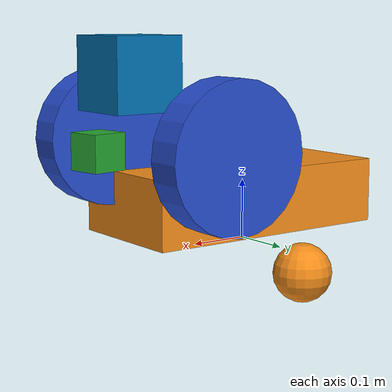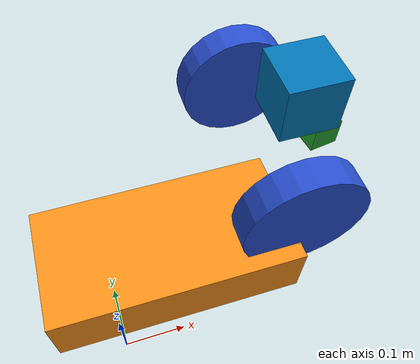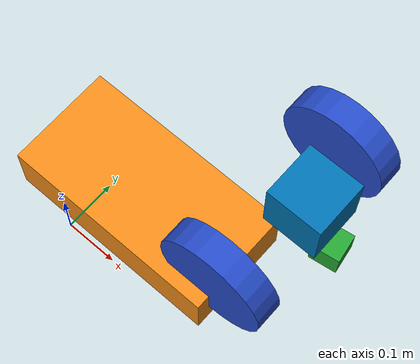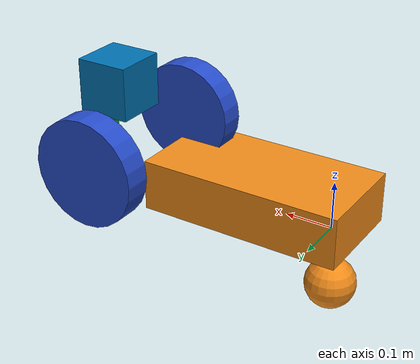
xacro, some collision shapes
<?xml version='1.0'?>

<robot name="myrobot" xmlns:xacro="http://www.ros.org/wiki/xacro">

<!-- camera size -->
  <xacro:property name="cameraSize" value="0.05"/>
  <xacro:property name="cameraMass" value="0.1"/>
<!-- robot's position -->
  <xacro:property name="pose_x" value="0.1"/>
  <xacro:property name="pose_y" value="0.1"/>
  <xacro:property name="pose_z" value="0.1"/>

  <xacro:include filename="$(find gazebo_sim)/src/mybot_ws/src/mybot_description/urdf/mybot.gazebo" />
  <xacro:include filename="$(find gazebo_sim)/src/mybot_ws/src/mybot_description/urdf/materials.xacro" />
  <xacro:include filename="$(find gazebo_sim)/src/mybot_ws/src/mybot_description/urdf/macros.xacro" />

  <link name='chassis'>
    <pose>${pose_x} ${pose_y} ${pose_z} 0 0 0</pose>

    <inertial>
      <mass value="10.0"/>
      <origin xyz="${pose_x} ${pose_y} ${pose_z+0.1}" rpy=" 0 0 0"/>
      <inertia
          ixx="0.5" ixy="0" ixz="0"
          iyy="1.0" iyz="0"
          izz="0.1"
      />
    </inertial>

    <collision name='collision'>
      <geometry>
        <box size=".4 .2 .1"/>
      </geometry>
    </collision>

    <visual name='chassis_visual'>
      <origin xyz="${pose_x} ${pose_y} ${pose_z}" rpy=" 0 0 0"/>
      <geometry>
        <box size=".4 .2 .1"/>
      </geometry>
    </visual>

    <collision name='caster_collision'>
      <origin xyz="${pose_x-0.15} ${pose_y} ${pose_z-0.15}" rpy=" 0 0 0"/>
      <geometry>
        <sphere radius="0.05"/>
      </geometry>
      <surface>
        <friction>
          <ode>
            <mu>0</mu>
            <mu2>0</mu2>
            <slip1>1.0</slip1>
            <slip2>1.0</slip2>
          </ode>
        </friction>
      </surface>
    </collision>

    <visual name='caster_visual'>
      <origin xyz="${pose_x-0.15} ${pose_y} ${pose_z-0.15}" rpy=" 0 0 0"/>
      <geometry>
        <sphere radius="0.05"/>
      </geometry>
    </visual>
  </link>

  <link name="left_wheel">
    <!--origin xyz="0.1 0.13 0.1" rpy="0 1.5707 1.5707"/-->
    <collision name="collision">
      <origin xyz="${pose_x} ${pose_y} ${pose_z}" rpy="0 1.5707 1.5707"/>
      <geometry>
        <cylinder radius="0.1" length="0.05"/>
      </geometry>
    </collision>
    <visual name="left_wheel_visual">
      <origin xyz="${pose_x} ${pose_y} ${pose_z}" rpy="0 1.5707 1.5707"/>
      <geometry>
        <cylinder radius="0.1" length="0.05"/>
      </geometry>
    </visual>
    <inertial>
      <origin xyz="${pose_x} ${pose_y} ${pose_z}" rpy="0 1.5707 1.5707"/>
      <mass value="5"/>
      <cylinder_inertia m="5" r="0.1" h="0.05"/>
      <inertia
        ixx="1.0" ixy="0.0" ixz="0.0"
        iyy="1.0" iyz="0.0"
        izz="1.0"/>
    </inertial>
  </link>

  <link name="right_wheel">
    <!--origin xyz="0.1 -0.13 0.1" rpy="0 1.5707 1.5707"/-->
    <collision name="collision">
      <origin xyz="${pose_x} ${pose_y} ${pose_z}" rpy="0 1.5707 1.5707"/>
      <geometry>
        <cylinder radius="0.1" length="0.05"/>
      </geometry>
    </collision>
    <visual name="right_wheel_visual">
      <origin xyz="${pose_x} ${pose_y} ${pose_z}" rpy="0 1.5707 1.5707"/>
      <geometry>
        <cylinder radius="0.1" length="0.05"/>
      </geometry>
    </visual>
    <inertial>
      <origin xyz="${pose_x} ${pose_y} ${pose_z}" rpy="0 1.5707 1.5707"/>
      <mass value="5"/>
      <cylinder_inertia m="5" r="0.1" h="0.05"/>
      <inertia
        ixx="1.0" ixy="0.0" ixz="0.0"
        iyy="1.0" iyz="0.0"
        izz="1.0"/>
    </inertial>
  </link>

  <joint type="continuous" name="left_wheel_hinge">
    <origin xyz="${pose_x+0.1} ${pose_y+0.15} ${pose_z+0}" rpy="0 0 0"/>
    <!--origin xyz="0.1 0.13 0" rpy="0 1.5707 1.5707"/-->
    <child link="left_wheel"/>
    <parent link="chassis"/>
    <axis xyz="0 1 0" rpy="0 0 0"/>
    <limit effort="100" velocity="100"/>
    <joint_properties damping="0.0" friction="0.0"/>
  </joint>

  <joint type="continuous" name="right_wheel_hinge">
    <origin xyz="${pose_x+0.1} ${pose_y-0.15} ${pose_z+0}" rpy="0 0 0"/>
    <!--origin xyz="0.1 -0.13 0" rpy="0 1.5707 1.5707"/-->
    <child link="right_wheel"/>
    <parent link="chassis"/>
    <axis xyz="0 1 0" rpy="0 0 0"/>
    <limit effort="100" velocity="100"/>
    <joint_properties damping="0.0" friction="0.0"/>
  </joint>

  <link name="camera">
    <collision>
      <origin xyz="${pose_x} ${pose_y} ${pose_z}" rpy="0 0 30"/>
      <geometry>
        <box size="${cameraSize} ${cameraSize} ${cameraSize}"/>
      </geometry>
    </collision>

    <visual>
      <origin xyz="${pose_x} ${pose_y} ${pose_z}" rpy="0 0 30"/>
      <geometry>
        <box size="${cameraSize} ${cameraSize} ${cameraSize}"/>
      </geometry>
      <material name="green"/>
    </visual>

    <inertial>
      <mass value="${cameraMass}" />
      <origin xyz="${pose_x} ${pose_y} ${pose_z}" rpy="0 0 30"/>
      <box_inertia m="${cameraMass}" x="${cameraSize}" y="${cameraSize}" z="${cameraSize}" />
      <inertia ixx="1e-6" ixy="0" ixz="0" iyy="1e-6" iyz="0" izz="1e-6" />
    </inertial>
  </link>

  <joint name="camera_joint" type="fixed">
    <axis xyz="0 1 0" />
    <origin xyz="${pose_x+0.2} ${pose_y} ${pose_z}" rpy="0 0 0"/>
    <parent link="chassis"/>
    <child link="camera"/>
  </joint>

  <joint name="hokuyo_joint" type="fixed">
    <axis xyz="0 1 0" />
    <origin xyz="${pose_x+0.15} ${pose_y} ${pose_z+0.1}" rpy="0 0 0"/>
    <parent link="chassis"/>
    <child link="hokuyo"/>
  </joint>

  <!-- Hokuyo Laser -->
  <link name="hokuyo">
    <collision>
      <origin xyz="${pose_x} ${pose_y} ${pose_z}" rpy="0 0 0"/>
      <geometry>
    <box size="0.1 0.1 0.1"/>
      </geometry>
    </collision>

    <visual>
      <origin xyz="${pose_x} ${pose_y} ${pose_z}" rpy="0 0 0"/>
      <geometry>
        <mesh filename="package://gazebo_sim/src/mybot_ws/src/mybot_description/meshes/hokuyo.dae"/>
      </geometry>
    </visual>

    <inertial>
      <mass value="1e-5" />
      <origin xyz="${pose_x} ${pose_y} ${pose_z}" rpy="0 0 0"/>
      <inertia ixx="1e-6" ixy="0" ixz="0" iyy="1e-6" iyz="0" izz="1e-6" />
    </inertial>
  </link>

</robot>
